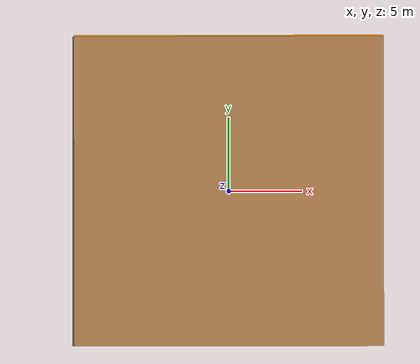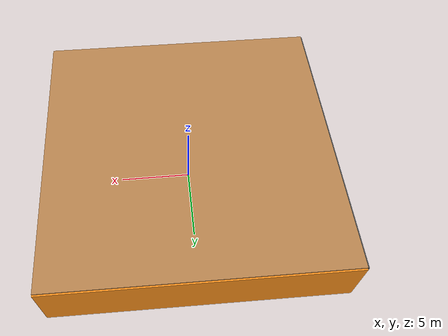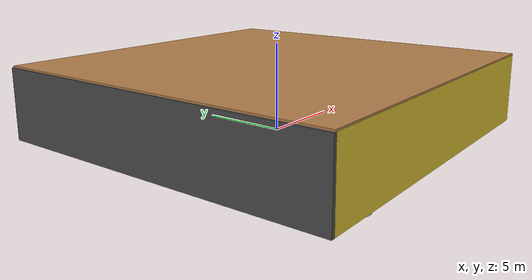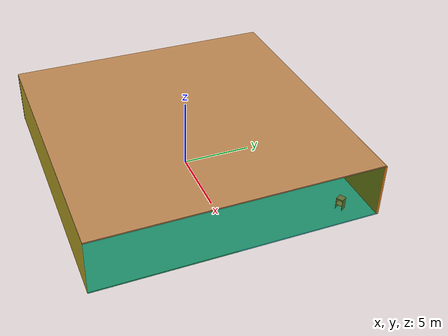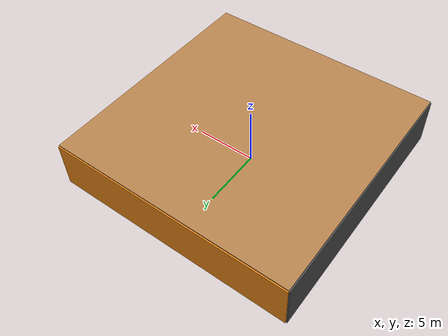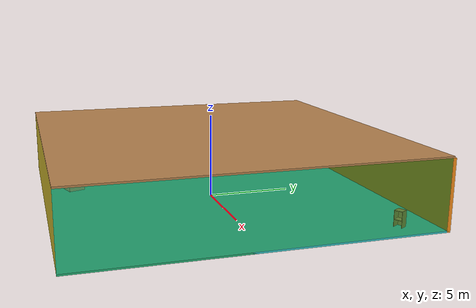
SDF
<sdf version="1.4">
 <world name="default">
  <physics type="ode">
   <max_step_size>0.001</max_step_size>
   <real_time_factor>1</real_time_factor>
   <real_time_update_rate>1000</real_time_update_rate>
   <gravity>0 0 -9.8</gravity>
  </physics>
  <scene><ambient>0.4 0.4 0.4 1</ambient><background>0.7 0.7 0.7 1</background><shadows>1</shadows></scene>
  <model name="Surrounding">
   <static>1</static>
   <link name="Ceiling">
    <collision name="Ceiling_Collision"><geometry><box><size>20 20 0.1</size></box></geometry></collision>
    <visual name="Ceiling_Visual">
     <geometry><box><size>20 20 0.1</size></box></geometry>
     <material>
      <script><uri>file://media/materials/scripts/gazebo.material</uri><name>Gazebo/Wood</name></script>
     </material>
    </visual>
    <pose>0 0 4.05 0 0 0</pose>
   </link>
   <link name="Wall_South">
    <collision name="Wall_South_Collision">
     <geometry><box><size>20 0 4</size></box></geometry>
     <pose>0 0 2 0 -0 0</pose>
    </collision>
    <visual name="Wall_South_Visual">
     <pose>0 0 2 0 -0 0</pose>
     <geometry><box><size>20 0 4</size></box></geometry>
     <material>
      <script><uri>file://media/materials/scripts/gazebo.material</uri><name>Gazebo/ZincYellow</name></script>
     </material>
    </visual>
    <velocity_decay><linear>0</linear><angular>0</angular></velocity_decay>
    <pose>0 -10 0 0 -0 0</pose>
   </link>
   <link name="Wall_East">
    <collision name="Wall_21_Collision">
     <geometry><box><size>20 0 4</size></box></geometry>
     <pose>0 0 2 0 -0 0</pose>
    </collision>
    <visual name="Wall_21_Visual">
     <pose>0 0 2 0 -0 0</pose>
     <geometry><box><size>20 0 4</size></box></geometry>
     <material>
      <script><uri>file://media/materials/scripts/gazebo.material</uri><name>Gazebo/GreenTransparent</name></script>
     </material>
    </visual>
    <velocity_decay><linear>0</linear><angular>0</angular></velocity_decay>
    <pose>10 0 0 0 -0 1.5708</pose>
   </link>
   <link name="Wall_North">
    <collision name="Wall_22_Collision">
     <geometry><box><size>20 0.2 4</size></box></geometry>
     <pose>0 0 2 0 -0 0</pose>
    </collision>
    <visual name="Wall_22_Visual">
     <pose>0 0 2 0 -0 0</pose>
     <geometry><box><size>20 0.2 4</size></box></geometry>
     <material>
      <script><uri>file://media/materials/scripts/gazebo.material</uri><name>Gazebo/Orange</name></script>
     </material>
    </visual>
    <velocity_decay><linear>0</linear><angular>0</angular></velocity_decay>
    <pose>0 10 0 0 -0 0</pose>
   </link>
   <link name="Wall_West">
    <collision name="Wall_23_Collision">
     <geometry><box><size>20 0.2 4</size></box></geometry>
     <pose>0 0 2 0 -0 0</pose>
    </collision>
    <visual name="Wall_23_Visual">
     <pose>0 0 2 0 -0 0</pose>
     <geometry><box><size>20 0.2 4</size></box></geometry>
     <material>
      <script><uri>file://media/materials/scripts/gazebo.material</uri><name>Gazebo/Road</name></script>
     </material>
    </visual>
    <velocity_decay><linear>0</linear><angular>0</angular></velocity_decay>
    <pose>-10 0 0 0 0 -1.5708</pose>
   </link>
   <link name="Ground_link">
    <collision name="collision">
     <pose>0 0 .05 0 -0 0</pose>
     <geometry><box><size>20 20 0.1</size></box></geometry>
    </collision>
    <visual name="visual">
     <pose>0 0 .05 0 -0 0</pose>
     <geometry><box><size>20 20 0.1</size></box></geometry>
     <material>
      <script><uri>file://media/materials/scripts/gazebo.material</uri><name>Gazebo/TurquoiseGlow</name></script>
     </material>
    </visual>
   </link>
   <static>1</static>
  </model>
  <spherical_coordinates>
   <surface_model>EARTH_WGS84</surface_model>
   <latitude_deg>0</latitude_deg>
   <longitude_deg>0</longitude_deg>
   <elevation>0</elevation>
   <heading_deg>0</heading_deg>
  </spherical_coordinates>
  <light name="lightball_0" type="diffuse">
   <diffuse>0.8 0.8 0.8 1</diffuse>
   <specular>0.2 0.2 0.2 1</specular>
   <attenuation>
    <range>100</range>
    <constant>0.7</constant>
    <linear>0.01</linear>
    <quadratic>0.001</quadratic>
   </attenuation>
   <direction>-0.5 0.1 -0.9</direction>
   <pose>1.12988377903 0.823795957193 0.776036449607 0 0 0</pose>
  </light>
  <light name="lightball_1" type="diffuse">
   <diffuse>0.8 0.8 0.8 1</diffuse>
   <specular>0.2 0.2 0.2 1</specular>
   <attenuation>
    <range>100</range>
    <constant>0.7</constant>
    <linear>0.01</linear>
    <quadratic>0.001</quadratic>
   </attenuation>
   <direction>-0.5 0.1 -0.9</direction>
   <pose>0.044255730837 8.28094731366 0.9765080869 0 0 0</pose>
  </light>
  <light name="lightball_2" type="diffuse">
   <diffuse>0.8 0.8 0.8 1</diffuse>
   <specular>0.2 0.2 0.2 1</specular>
   <attenuation>
    <range>100</range>
    <constant>0.7</constant>
    <linear>0.01</linear>
    <quadratic>0.001</quadratic>
   </attenuation>
   <direction>-0.5 0.1 -0.9</direction>
   <pose>2.4426917236 -4.9303626375 1.03393563228 0 0 0</pose>
  </light>
  <light name="lightball_3" type="diffuse">
   <diffuse>0.8 0.8 0.8 1</diffuse>
   <specular>0.2 0.2 0.2 1</specular>
   <attenuation>
    <range>100</range>
    <constant>0.7</constant>
    <linear>0.01</linear>
    <quadratic>0.001</quadratic>
   </attenuation>
   <direction>-0.5 0.1 -0.9</direction>
   <pose>8.36991243556 -0.209275575268 2.80802736718 0 0 0</pose>
  </light>
  <light name="lightball_4" type="diffuse">
   <diffuse>0.8 0.8 0.8 1</diffuse>
   <specular>0.2 0.2 0.2 1</specular>
   <attenuation>
    <range>100</range>
    <constant>0.7</constant>
    <linear>0.01</linear>
    <quadratic>0.001</quadratic>
   </attenuation>
   <direction>-0.5 0.1 -0.9</direction>
   <pose>-3.67874982027 8.16342507614 1.61178948696 0 0 0</pose>
  </light>
  <include><uri>model://cabinet</uri><pose>-7.09639175845 -5.62384427931 0 0 0 2.59247610988</pose></include>
  <include>
   <uri>model://textured_shapes</uri>
   <pose>-4.92560391899 -8.55699369177 0 0 0 1.90383265029</pose>
  </include>
  <include><uri>model://cabinet</uri><pose>-4.82950583345 -3.35649661077 0 0 0 2.51881061295</pose></include>
  <include><uri>model://cabinet</uri><pose>8.68628634863 7.89610122208 0 0 0 2.0792200153</pose></include>
 </world>
</sdf>

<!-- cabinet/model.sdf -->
<sdf version="1.5">
  <model name="cabinet">
    <static>true</static>
    <link name="cabinet_bottom_plate">
      <inertial>
        <pose>0 0 -1 0 0 0</pose>
        <inertia>
          <ixx>2.050000</ixx>
          <ixy>0</ixy>
          <ixz>0</ixz>
          <iyy>2.050000</iyy>
          <iyz>0</iyz>
          <izz>2.050000</izz>
        </inertia>
        <mass>25.000000</mass>
      </inertial>
      <collision name="cabinet_bottom_plate_geom">
        <pose>0 0 0.010000 0 0 0</pose>
        <geometry>
          <box>
            <size>0.450000 0.450000 0.020000</size>
          </box>
        </geometry>
      </collision>
      <visual name="cabinet_bottom_plate_geom_visual">
        <pose>0 0 0.010000 0 0 0</pose>
        <geometry>
          <box>
            <size>0.450000 0.450000 0.020000</size>
          </box>
        </geometry>
        <material>
          <script>
            <uri>model://media/materials/scripts/gazebo.material</uri>
            <name>Gazebo/Wood</name>
          </script>
        </material>
      </visual>
      <collision name="cabinet_bottom_plate_geom_cabinet_back_plate">
        <pose>0.235000 0 0.510000 0 0 0</pose>
        <geometry>
          <box>
            <size>0.020000 0.450000 1.020000</size>
          </box>
        </geometry>
      </collision>
      <visual name="cabinet_bottom_plate_geom_cabinet_back_plate_visual">
        <pose>0.235000 0 0.510000 0 0 0</pose>
        <geometry>
          <box>
            <size>0.020000 0.450000 1.020000</size>
          </box>
        </geometry>
        <material>
          <script>
            <uri>model://media/materials/scripts/gazebo.material</uri>
            <name>Gazebo/Wood</name>
          </script>
        </material>
      </visual>
      <collision name="cabinet_bottom_plate_geom_cabinet_left_plate">
        <pose>0 0.235000 0.510000 0 0 0</pose>
        <geometry>
          <box>
            <size>0.450000 0.020000 1.020000</size>
          </box>
        </geometry>
      </collision>
      <visual name="cabinet_bottom_plate_geom_cabinet_left_plate_visual">
        <pose>0 0.235000 0.510000 0 0 0</pose>
        <geometry>
          <box>
            <size>0.450000 0.020000 1.020000</size>
          </box>
        </geometry>
        <material>
          <script>
            <uri>model://media/materials/scripts/gazebo.material</uri>
            <name>Gazebo/Wood</name>
          </script>
        </material>
      </visual>
      <collision name="cabinet_bottom_plate_geom_cabinet_middle_plate">
        <pose>0 0 0.510000 0 0 0</pose>
        <geometry>
          <box>
            <size>0.450000 0.450000 0.020000</size>
          </box>
        </geometry>
      </collision>
      <visual name="cabinet_bottom_plate_geom_cabinet_middle_plate_visual">
        <pose>0 0 0.510000 0 0 0</pose>
        <geometry>
          <box>
            <size>0.450000 0.450000 0.020000</size>
          </box>
        </geometry>
        <material>
          <script>
            <uri>model://media/materials/scripts/gazebo.material</uri>
            <name>Gazebo/Wood</name>
          </script>
        </material>
      </visual>
      <collision name="cabinet_bottom_plate_geom_cabinet_right_plate">
        <pose>0 -0.235000 0.510000 0 0 0</pose>
        <geometry>
          <box>
            <size>0.450000 0.020000 1.020000</size>
          </box>
        </geometry>
      </collision>
      <visual name="cabinet_bottom_plate_geom_cabinet_right_plate_visual">
        <pose>0 -0.235000 0.510000 0 0 0</pose>
        <geometry>
          <box>
            <size>0.450000 0.020000 1.020000</size>
          </box>
        </geometry>
        <material>
          <script>
            <uri>model://media/materials/scripts/gazebo.material</uri>
            <name>Gazebo/Wood</name>
          </script>
        </material>
      </visual>
      <collision name="cabinet_bottom_plate_geom_cabinet_top_plate">
        <pose>0 0 1.010000 0 0 0</pose>
        <geometry>
          <box>
            <size>0.450000 0.450000 0.020000</size>
          </box>
        </geometry>
      </collision>
      <visual name="cabinet_bottom_plate_geom_cabinet_top_plate_visual">
        <pose>0 0 1.010000 0 0 0</pose>
        <geometry>
          <box>
            <size>0.450000 0.450000 0.020000</size>
          </box>
        </geometry>
        <material>
          <script>
            <uri>model://media/materials/scripts/gazebo.material</uri>
            <name>Gazebo/Wood</name>
          </script>
        </material>
      </visual>
    </link>
  </model>
</sdf>

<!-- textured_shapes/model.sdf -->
<sdf version="1.6">
  <model name="textured_shapes">
    <pose>0 0 0.5 0 0 0</pose>
    <link name="box">
      <pose>0 -1.5 0 0 0 0</pose>
      <collision name="collision">
        <geometry>
          <box>
            <size>1 1 1</size>
          </box>
        </geometry>
      </collision>
      <visual name="visual">
        <geometry>
          <box>
            <size>1 1 1</size>
          </box>
        </geometry>
        <material>
          <script>
            <uri>model://../model_source/models/textured_shapes/materials/scripts</uri>
            <uri>model://../model_source/models/textured_shapes/materials/textures</uri>
            <name>TexturedShape/Squares</name>
          </script>
        </material>
      </visual>
    </link>
    <link name="sphere">
      <collision name="collision">
        <geometry>
          <sphere>
            <radius>0.5</radius>
          </sphere>
        </geometry>
      </collision>
      <visual name="visual">
        <geometry>
          <sphere>
            <radius>0.5</radius>
          </sphere>
        </geometry>
        <material>
          <script>
            <uri>model://../model_source/models/textured_shapes/materials/scripts</uri>
            <uri>model://../model_source/models/textured_shapes/materials/textures</uri>
            <name>TexturedShape/Squares</name>
          </script>
        </material>
      </visual>
    </link>
    <link name="cylinder">
      <pose>0 1.5 0 0 0 0</pose>
      <collision name="collision">
        <geometry>
          <cylinder>
            <radius>0.5</radius>
            <length>1</length>
          </cylinder>
        </geometry>
      </collision>
      <visual name="visual">
        <geometry>
          <cylinder>
            <radius>0.5</radius>
            <length>1</length>
          </cylinder>
        </geometry>
        <material>
          <script>
            <uri>model://../model_source/models/textured_shapes/materials/scripts</uri>
            <uri>model://../model_source/models/textured_shapes/materials/textures</uri>
            <name>TexturedShape/Squares</name>
          </script>
        </material>
      </visual>
    </link>
  </model>
</sdf>
